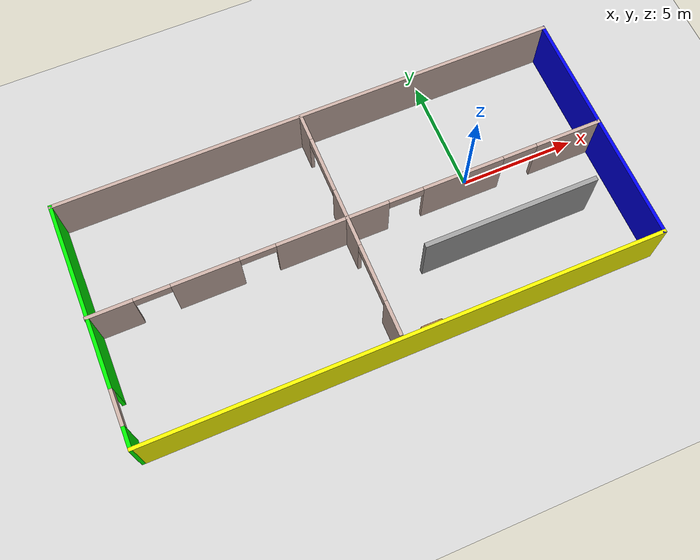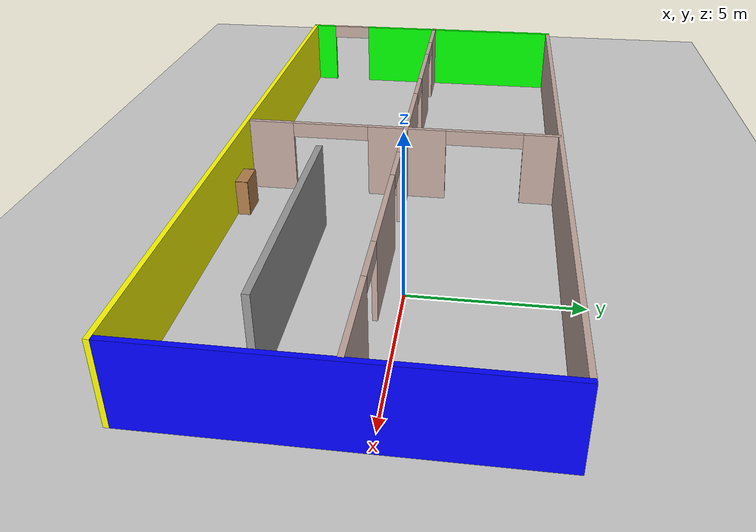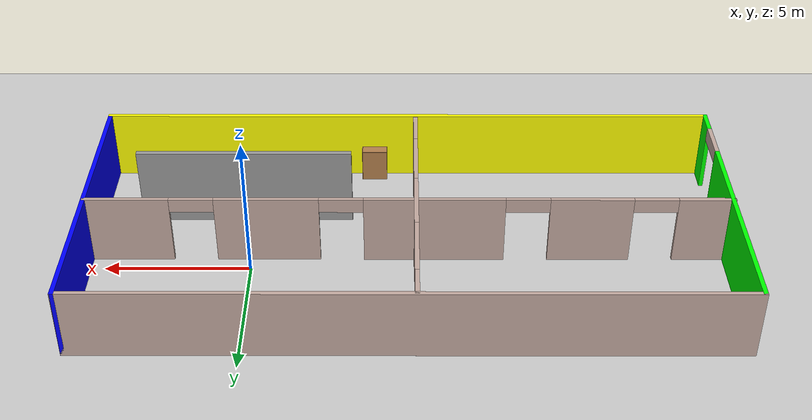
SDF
<sdf version="1.6">
 <world name="default">
  <model name="ground_plane">
   <static>1</static>
   <link name="link">
    <collision name="collision">
     <geometry><plane><normal>0 0 1</normal><size>100 100</size></plane></geometry>
     <surface><friction><ode><mu>100</mu><mu2>50</mu2></ode></friction></surface>
    </collision>
    <visual name="visual">
     <cast_shadows>0</cast_shadows>
     <geometry><plane><normal>0 0 1</normal><size>100 100</size></plane></geometry>
     <material>
      <script><uri>file://media/materials/scripts/gazebo.material</uri><name>Gazebo/Grey</name></script>
     </material>
    </visual>
   </link>
  </model>
  <model name="grey_wall">
   <static>1</static>
   <link name="link">
    <pose>0 0 1.4 0 -0 0</pose>
    <collision name="collision"><geometry><box><size>7.5 0.2 2.8</size></box></geometry></collision>
    <visual name="visual">
     <cast_shadows>0</cast_shadows>
     <geometry><box><size>7.5 0.2 2.8</size></box></geometry>
     <material>
      <script>
       <uri>model://grey_wall/materials/scripts</uri>
       <uri>model://grey_wall/materials/textures</uri>
       <name>vrc/grey_wall</name>
      </script>
     </material>
    </visual>
   </link>
   <pose>0.348783 -2.9961 0 0 -0 0</pose>
  </model>
  <model name="mybuilding">
   <link name="Wall_1">
    <pose>-10.9097 0 0 0 -0 1.5708</pose>
    <inertial>
     <mass>1</mass>
     <inertia><ixx>1</ixx><ixy>0</ixy><ixz>0</ixz><iyy>1</iyy><iyz>0</iyz><izz>1</izz></inertia>
    </inertial>
    <visual name="Wall_1_Visual_0">
     <pose>-4.76721 0 1.25 0 -0 0</pose>
     <geometry><box><size>0.965586 0.15 2.5</size></box></geometry>
     <material>
      <script><uri>file://media/materials/scripts/gazebo.material</uri><name>Gazebo/Grey</name></script>
      <ambient>0 1 0 1</ambient>
      <shader type="pixel"><normal_map>__default__</normal_map></shader>
      <diffuse>0 1 0 1</diffuse>
      <specular>0 1 0 1</specular>
      <emissive>0 1 0 1</emissive>
     </material>
     <meta><layer>0</layer></meta>
    </visual>
    <visual name="Wall_1_Visual_1">
     <pose>1.23279 0 1.25 0 -0 0</pose>
     <geometry><box><size>8.03441 0.15 2.5</size></box></geometry>
     <material>
      <script><uri>file://media/materials/scripts/gazebo.material</uri><name>Gazebo/Grey</name></script>
      <ambient>0 1 0 1</ambient>
      <shader type="pixel"><normal_map>__default__</normal_map></shader>
      <diffuse>0 1 0 1</diffuse>
      <specular>0 1 0 1</specular>
      <emissive>0 1 0 1</emissive>
     </material>
     <meta><layer>0</layer></meta>
    </visual>
    <visual name="Wall_1_Visual_2">
     <pose>-3.53441 0 2.25 0 -0 0</pose>
     <geometry><box><size>1.5 0.15 0.5</size></box></geometry>
     <material>
      <script><uri>file://media/materials/scripts/gazebo.material</uri><name>Gazebo/Grey</name></script>
      <ambient>0.761 0.663 0.627 1</ambient>
      <shader type="pixel"><normal_map>__default__</normal_map></shader>
      <diffuse>0.7 0.7 0.7 1</diffuse>
      <specular>0.01 0.01 0.01 1</specular>
      <emissive>0 0 0 1</emissive>
     </material>
     <meta><layer>0</layer></meta>
    </visual>
    <collision name="Wall_1_Collision_0">
     <pose>-4.76721 0 1.25 0 -0 0</pose>
     <geometry><box><size>0.965586 0.15 2.5</size></box></geometry>
     <surface>
      <friction>
       <ode><mu>1</mu><mu2>1</mu2><fdir1>0 0 0</fdir1><slip1>0</slip1><slip2>0</slip2></ode>
       <torsional>
        <coefficient>1</coefficient>
        <patch_radius>0</patch_radius>
        <surface_radius>0</surface_radius>
        <use_patch_radius>1</use_patch_radius>
        <ode><slip>0</slip></ode>
       </torsional>
      </friction>
      <bounce><restitution_coefficient>0</restitution_coefficient><threshold>1e+06</threshold></bounce>
      <contact>
       <collide_without_contact>0</collide_without_contact>
       <collide_without_contact_bitmask>1</collide_without_contact_bitmask>
       <collide_bitmask>1</collide_bitmask>
       <ode>
        <soft_cfm>0</soft_cfm>
        <soft_erp>0.2</soft_erp>
        <kp>1e+13</kp>
        <kd>1</kd>
        <max_vel>0.01</max_vel>
        <min_depth>0</min_depth>
       </ode>
       <bullet>
        <split_impulse>1</split_impulse>
        <split_impulse_penetration_threshold>-0.01</split_impulse_penetration_threshold>
        <soft_cfm>0</soft_cfm>
        <soft_erp>0.2</soft_erp>
        <kp>1e+13</kp>
        <kd>1</kd>
       </bullet>
      </contact>
     </surface>
    </collision>
    <collision name="Wall_1_Collision_1">
     <pose>1.23279 0 1.25 0 -0 0</pose>
     <geometry><box><size>8.03441 0.15 2.5</size></box></geometry>
     <surface>
      <friction>
       <ode><mu>1</mu><mu2>1</mu2><fdir1>0 0 0</fdir1><slip1>0</slip1><slip2>0</slip2></ode>
       <torsional>
        <coefficient>1</coefficient>
        <patch_radius>0</patch_radius>
        <surface_radius>0</surface_radius>
        <use_patch_radius>1</use_patch_radius>
        <ode><slip>0</slip></ode>
       </torsional>
      </friction>
      <bounce><restitution_coefficient>0</restitution_coefficient><threshold>1e+06</threshold></bounce>
      <contact>
       <collide_without_contact>0</collide_without_contact>
       <collide_without_contact_bitmask>1</collide_without_contact_bitmask>
       <collide_bitmask>1</collide_bitmask>
       <ode>
        <soft_cfm>0</soft_cfm>
        <soft_erp>0.2</soft_erp>
        <kp>1e+13</kp>
        <kd>1</kd>
        <max_vel>0.01</max_vel>
        <min_depth>0</min_depth>
       </ode>
       <bullet>
        <split_impulse>1</split_impulse>
        <split_impulse_penetration_threshold>-0.01</split_impulse_penetration_threshold>
        <soft_cfm>0</soft_cfm>
        <soft_erp>0.2</soft_erp>
        <kp>1e+13</kp>
        <kd>1</kd>
       </bullet>
      </contact>
     </surface>
    </collision>
    <collision name="Wall_1_Collision_2">
     <pose>-3.53441 0 2.25 0 -0 0</pose>
     <geometry><box><size>1.5 0.15 0.5</size></box></geometry>
     <surface>
      <friction>
       <ode><mu>1</mu><mu2>1</mu2><fdir1>0 0 0</fdir1><slip1>0</slip1><slip2>0</slip2></ode>
       <torsional>
        <coefficient>1</coefficient>
        <patch_radius>0</patch_radius>
        <surface_radius>0</surface_radius>
        <use_patch_radius>1</use_patch_radius>
        <ode><slip>0</slip></ode>
       </torsional>
      </friction>
      <bounce><restitution_coefficient>0</restitution_coefficient><threshold>1e+06</threshold></bounce>
      <contact>
       <collide_without_contact>0</collide_without_contact>
       <collide_without_contact_bitmask>1</collide_without_contact_bitmask>
       <collide_bitmask>1</collide_bitmask>
       <ode>
        <soft_cfm>0</soft_cfm>
        <soft_erp>0.2</soft_erp>
        <kp>1e+13</kp>
        <kd>1</kd>
        <max_vel>0.01</max_vel>
        <min_depth>0</min_depth>
       </ode>
       <bullet>
        <split_impulse>1</split_impulse>
        <split_impulse_penetration_threshold>-0.01</split_impulse_penetration_threshold>
        <soft_cfm>0</soft_cfm>
        <soft_erp>0.2</soft_erp>
        <kp>1e+13</kp>
        <kd>1</kd>
       </bullet>
      </contact>
     </surface>
    </collision>
   </link>
   <link name="Wall_2">
    <pose>0.015294 5.175 0 0 -0 0</pose>
    <visual name="Wall_2_Visual">
     <pose>0 0 1.25 0 -0 0</pose>
     <geometry><box><size>22 0.15 2.5</size></box></geometry>
     <material>
      <script><uri>file://media/materials/scripts/gazebo.material</uri><name>Gazebo/Grey</name></script>
      <ambient>0.760784 0.662745 0.627451 1</ambient>
      <shader type="pixel"/>
      <diffuse>0.7 0.7 0.7 1</diffuse>
      <specular>0.01 0.01 0.01 1</specular>
      <emissive>0 0 0 1</emissive>
     </material>
     <meta><layer>0</layer></meta>
    </visual>
    <collision name="Wall_2_Collision">
     <pose>0 0 1.25 0 -0 0</pose>
     <geometry><box><size>22 0.15 2.5</size></box></geometry>
     <surface>
      <friction>
       <ode><mu>1</mu><mu2>1</mu2><fdir1>0 0 0</fdir1><slip1>0</slip1><slip2>0</slip2></ode>
       <torsional>
        <coefficient>1</coefficient>
        <patch_radius>0</patch_radius>
        <surface_radius>0</surface_radius>
        <use_patch_radius>1</use_patch_radius>
        <ode><slip>0</slip></ode>
       </torsional>
      </friction>
      <bounce><restitution_coefficient>0</restitution_coefficient><threshold>1e+06</threshold></bounce>
      <contact>
       <collide_without_contact>0</collide_without_contact>
       <collide_without_contact_bitmask>1</collide_without_contact_bitmask>
       <collide_bitmask>1</collide_bitmask>
       <ode>
        <soft_cfm>0</soft_cfm>
        <soft_erp>0.2</soft_erp>
        <kp>1e+13</kp>
        <kd>1</kd>
        <max_vel>0.01</max_vel>
        <min_depth>0</min_depth>
       </ode>
       <bullet>
        <split_impulse>1</split_impulse>
        <split_impulse_penetration_threshold>-0.01</split_impulse_penetration_threshold>
        <soft_cfm>0</soft_cfm>
        <soft_erp>0.2</soft_erp>
        <kp>1e+13</kp>
        <kd>1</kd>
       </bullet>
      </contact>
     </surface>
    </collision>
   </link>
   <link name="Wall_3">
    <pose>10.9403 0 0 0 0 -1.5708</pose>
    <inertial>
     <mass>1</mass>
     <inertia><ixx>1</ixx><ixy>0</ixy><ixz>0</ixz><iyy>1</iyy><iyz>0</iyz><izz>1</izz></inertia>
    </inertial>
    <visual name="Wall_3_Visual">
     <pose>0 0 1.25 0 -0 0</pose>
     <geometry><box><size>10.5 0.15 2.5</size></box></geometry>
     <material>
      <script><uri>file://media/materials/scripts/gazebo.material</uri><name>Gazebo/Grey</name></script>
      <ambient>0 0 1 1</ambient>
      <shader type="pixel"><normal_map>__default__</normal_map></shader>
      <diffuse>0 0 1 1</diffuse>
      <specular>0 0 1 1</specular>
      <emissive>0 0 1 1</emissive>
     </material>
     <meta><layer>0</layer></meta>
    </visual>
    <collision name="Wall_3_Collision">
     <pose>0 0 1.25 0 -0 0</pose>
     <geometry><box><size>10.5 0.15 2.5</size></box></geometry>
     <surface>
      <friction>
       <ode><mu>1</mu><mu2>1</mu2><fdir1>0 0 0</fdir1><slip1>0</slip1><slip2>0</slip2></ode>
       <torsional>
        <coefficient>1</coefficient>
        <patch_radius>0</patch_radius>
        <surface_radius>0</surface_radius>
        <use_patch_radius>1</use_patch_radius>
        <ode><slip>0</slip></ode>
       </torsional>
      </friction>
      <bounce><restitution_coefficient>0</restitution_coefficient><threshold>1e+06</threshold></bounce>
      <contact>
       <collide_without_contact>0</collide_without_contact>
       <collide_without_contact_bitmask>1</collide_without_contact_bitmask>
       <collide_bitmask>1</collide_bitmask>
       <ode>
        <soft_cfm>0</soft_cfm>
        <soft_erp>0.2</soft_erp>
        <kp>1e+13</kp>
        <kd>1</kd>
        <max_vel>0.01</max_vel>
        <min_depth>0</min_depth>
       </ode>
       <bullet>
        <split_impulse>1</split_impulse>
        <split_impulse_penetration_threshold>-0.01</split_impulse_penetration_threshold>
        <soft_cfm>0</soft_cfm>
        <soft_erp>0.2</soft_erp>
        <kp>1e+13</kp>
        <kd>1</kd>
       </bullet>
      </contact>
     </surface>
    </collision>
   </link>
   <link name="Wall_4">
    <pose>0.015294 -5.175 0 0 -0 3.14159</pose>
    <inertial>
     <mass>1</mass>
     <inertia><ixx>1</ixx><ixy>0</ixy><ixz>0</ixz><iyy>1</iyy><iyz>0</iyz><izz>1</izz></inertia>
    </inertial>
    <visual name="Wall_4_Visual">
     <pose>0 0 1.25 0 -0 0</pose>
     <geometry><box><size>22 0.15 2.5</size></box></geometry>
     <material>
      <script><uri>file://media/materials/scripts/gazebo.material</uri><name>Gazebo/Grey</name></script>
      <ambient>1 1 0 1</ambient>
      <shader type="pixel"><normal_map>__default__</normal_map></shader>
      <diffuse>1 1 0 1</diffuse>
      <specular>1 1 0 1</specular>
      <emissive>1 1 0 1</emissive>
     </material>
     <meta><layer>0</layer></meta>
    </visual>
    <collision name="Wall_4_Collision">
     <pose>0 0 1.25 0 -0 0</pose>
     <geometry><box><size>22 0.15 2.5</size></box></geometry>
     <surface>
      <friction>
       <ode><mu>1</mu><mu2>1</mu2><fdir1>0 0 0</fdir1><slip1>0</slip1><slip2>0</slip2></ode>
       <torsional>
        <coefficient>1</coefficient>
        <patch_radius>0</patch_radius>
        <surface_radius>0</surface_radius>
        <use_patch_radius>1</use_patch_radius>
        <ode><slip>0</slip></ode>
       </torsional>
      </friction>
      <bounce><restitution_coefficient>0</restitution_coefficient><threshold>1e+06</threshold></bounce>
      <contact>
       <collide_without_contact>0</collide_without_contact>
       <collide_without_contact_bitmask>1</collide_without_contact_bitmask>
       <collide_bitmask>1</collide_bitmask>
       <ode>
        <soft_cfm>0</soft_cfm>
        <soft_erp>0.2</soft_erp>
        <kp>1e+13</kp>
        <kd>1</kd>
        <max_vel>0.01</max_vel>
        <min_depth>0</min_depth>
       </ode>
       <bullet>
        <split_impulse>1</split_impulse>
        <split_impulse_penetration_threshold>-0.01</split_impulse_penetration_threshold>
        <soft_cfm>0</soft_cfm>
        <soft_erp>0.2</soft_erp>
        <kp>1e+13</kp>
        <kd>1</kd>
       </bullet>
      </contact>
     </surface>
    </collision>
   </link>
   <link name="Wall_6">
    <pose>-0.015296 0.17829 0 0 -0 0</pose>
    <visual name="Wall_6_Visual_0">
     <pose>-10.0374 0 1.25 0 -0 0</pose>
     <geometry><box><size>1.92517 0.15 2.5</size></box></geometry>
     <material>
      <script><uri>file://media/materials/scripts/gazebo.material</uri><name>Gazebo/Grey</name></script>
      <ambient>0.760784 0.662745 0.627451 1</ambient>
      <shader type="pixel"/>
      <diffuse>0.7 0.7 0.7 1</diffuse>
      <specular>0.01 0.01 0.01 1</specular>
      <emissive>0 0 0 1</emissive>
     </material>
     <meta><layer>0</layer></meta>
    </visual>
    <visual name="Wall_6_Visual_1">
     <pose>-6.16822 0 1.25 0 -0 0</pose>
     <geometry><box><size>2.81322 0.15 2.5</size></box></geometry>
     <material>
      <script><uri>file://media/materials/scripts/gazebo.material</uri><name>Gazebo/Grey</name></script>
      <ambient>0.760784 0.662745 0.627451 1</ambient>
      <shader type="pixel"/>
      <diffuse>0.7 0.7 0.7 1</diffuse>
      <specular>0.01 0.01 0.01 1</specular>
      <emissive>0 0 0 1</emissive>
     </material>
     <meta><layer>0</layer></meta>
    </visual>
    <visual name="Wall_6_Visual_2">
     <pose>-0.860815 0 1.25 0 -0 0</pose>
     <geometry><box><size>4.80159 0.15 2.5</size></box></geometry>
     <material>
      <script><uri>file://media/materials/scripts/gazebo.material</uri><name>Gazebo/Grey</name></script>
      <ambient>0.760784 0.662745 0.627451 1</ambient>
      <shader type="pixel"/>
      <diffuse>0.7 0.7 0.7 1</diffuse>
      <specular>0.01 0.01 0.01 1</specular>
      <emissive>0 0 0 1</emissive>
     </material>
     <meta><layer>0</layer></meta>
    </visual>
    <visual name="Wall_6_Visual_3">
     <pose>4.81367 0 1.25 0 -0 0</pose>
     <geometry><box><size>3.54739 0.15 2.5</size></box></geometry>
     <material>
      <script><uri>file://media/materials/scripts/gazebo.material</uri><name>Gazebo/Grey</name></script>
      <ambient>0.760784 0.662745 0.627451 1</ambient>
      <shader type="pixel"/>
      <diffuse>0.7 0.7 0.7 1</diffuse>
      <specular>0.01 0.01 0.01 1</specular>
      <emissive>0 0 0 1</emissive>
     </material>
     <meta><layer>0</layer></meta>
    </visual>
    <visual name="Wall_6_Visual_4">
     <pose>9.54368 0 1.25 0 -0 0</pose>
     <geometry><box><size>2.91263 0.15 2.5</size></box></geometry>
     <material>
      <script><uri>file://media/materials/scripts/gazebo.material</uri><name>Gazebo/Grey</name></script>
      <ambient>0.760784 0.662745 0.627451 1</ambient>
      <shader type="pixel"/>
      <diffuse>0.7 0.7 0.7 1</diffuse>
      <specular>0.01 0.01 0.01 1</specular>
      <emissive>0 0 0 1</emissive>
     </material>
     <meta><layer>0</layer></meta>
    </visual>
    <visual name="Wall_6_Visual_5">
     <pose>-8.32483 0 2.25 0 -0 0</pose>
     <geometry><box><size>1.5 0.15 0.5</size></box></geometry>
     <material>
      <script><uri>file://media/materials/scripts/gazebo.material</uri><name>Gazebo/Grey</name></script>
      <ambient>0.760784 0.662745 0.627451 1</ambient>
      <shader type="pixel"/>
      <diffuse>0.7 0.7 0.7 1</diffuse>
      <specular>0.01 0.01 0.01 1</specular>
      <emissive>0 0 0 1</emissive>
     </material>
     <meta><layer>0</layer></meta>
    </visual>
    <visual name="Wall_6_Visual_6">
     <pose>-4.01161 0 2.25 0 -0 0</pose>
     <geometry><box><size>1.5 0.15 0.5</size></box></geometry>
     <material>
      <script><uri>file://media/materials/scripts/gazebo.material</uri><name>Gazebo/Grey</name></script>
      <ambient>0.760784 0.662745 0.627451 1</ambient>
      <shader type="pixel"/>
      <diffuse>0.7 0.7 0.7 1</diffuse>
      <specular>0.01 0.01 0.01 1</specular>
      <emissive>0 0 0 1</emissive>
     </material>
     <meta><layer>0</layer></meta>
    </visual>
    <visual name="Wall_6_Visual_7">
     <pose>2.28998 0 2.25 0 -0 0</pose>
     <geometry><box><size>1.5 0.15 0.5</size></box></geometry>
     <material>
      <script><uri>file://media/materials/scripts/gazebo.material</uri><name>Gazebo/Grey</name></script>
      <ambient>0.760784 0.662745 0.627451 1</ambient>
      <shader type="pixel"/>
      <diffuse>0.7 0.7 0.7 1</diffuse>
      <specular>0.01 0.01 0.01 1</specular>
      <emissive>0 0 0 1</emissive>
     </material>
     <meta><layer>0</layer></meta>
    </visual>
    <visual name="Wall_6_Visual_8">
     <pose>7.33737 0 2.25 0 -0 0</pose>
     <geometry><box><size>1.5 0.15 0.5</size></box></geometry>
     <material>
      <script><uri>file://media/materials/scripts/gazebo.material</uri><name>Gazebo/Grey</name></script>
      <ambient>0.760784 0.662745 0.627451 1</ambient>
      <shader type="pixel"/>
      <diffuse>0.7 0.7 0.7 1</diffuse>
      <specular>0.01 0.01 0.01 1</specular>
      <emissive>0 0 0 1</emissive>
     </material>
     <meta><layer>0</layer></meta>
    </visual>
    <collision name="Wall_6_Collision_0">
     <pose>-10.0374 0 1.25 0 -0 0</pose>
     <geometry><box><size>1.92517 0.15 2.5</size></box></geometry>
     <surface>
      <friction>
       <ode><mu>1</mu><mu2>1</mu2><fdir1>0 0 0</fdir1><slip1>0</slip1><slip2>0</slip2></ode>
       <torsional>
        <coefficient>1</coefficient>
        <patch_radius>0</patch_radius>
        <surface_radius>0</surface_radius>
        <use_patch_radius>1</use_patch_radius>
        <ode><slip>0</slip></ode>
       </torsional>
      </friction>
      <bounce><restitution_coefficient>0</restitution_coefficient><threshold>1e+06</threshold></bounce>
      <contact>
       <collide_without_contact>0</collide_without_contact>
       <collide_without_contact_bitmask>1</collide_without_contact_bitmask>
       <collide_bitmask>1</collide_bitmask>
       <ode>
        <soft_cfm>0</soft_cfm>
        <soft_erp>0.2</soft_erp>
        <kp>1e+13</kp>
        <kd>1</kd>
        <max_vel>0.01</max_vel>
        <min_depth>0</min_depth>
       </ode>
       <bullet>
        <split_impulse>1</split_impulse>
        <split_impulse_penetration_threshold>-0.01</split_impulse_penetration_threshold>
        <soft_cfm>0</soft_cfm>
        <soft_erp>0.2</soft_erp>
        <kp>1e+13</kp>
        <kd>1</kd>
       </bullet>
      </contact>
     </surface>
    </collision>
    <collision name="Wall_6_Collision_1">
     <pose>-6.16822 0 1.25 0 -0 0</pose>
     <geometry><box><size>2.81322 0.15 2.5</size></box></geometry>
     <surface>
      <friction>
       <ode><mu>1</mu><mu2>1</mu2><fdir1>0 0 0</fdir1><slip1>0</slip1><slip2>0</slip2></ode>
       <torsional>
        <coefficient>1</coefficient>
        <patch_radius>0</patch_radius>
        <surface_radius>0</surface_radius>
        <use_patch_radius>1</use_patch_radius>
        <ode><slip>0</slip></ode>
       </torsional>
      </friction>
      <bounce><restitution_coefficient>0</restitution_coefficient><threshold>1e+06</threshold></bounce>
      <contact>
       <collide_without_contact>0</collide_without_contact>
       <collide_without_contact_bitmask>1</collide_without_contact_bitmask>
       <collide_bitmask>1</collide_bitmask>
       <ode>
        <soft_cfm>0</soft_cfm>
        <soft_erp>0.2</soft_erp>
        <kp>1e+13</kp>
        <kd>1</kd>
        <max_vel>0.01</max_vel>
        <min_depth>0</min_depth>
       </ode>
       <bullet>
        <split_impulse>1</split_impulse>
        <split_impulse_penetration_threshold>-0.01</split_impulse_penetration_threshold>
        <soft_cfm>0</soft_cfm>
        <soft_erp>0.2</soft_erp>
        <kp>1e+13</kp>
        <kd>1</kd>
       </bullet>
      </contact>
     </surface>
    </collision>
    <collision name="Wall_6_Collision_2">
     <pose>-0.860815 0 1.25 0 -0 0</pose>
     <geometry><box><size>4.80159 0.15 2.5</size></box></geometry>
     <surface>
      <friction>
       <ode><mu>1</mu><mu2>1</mu2><fdir1>0 0 0</fdir1><slip1>0</slip1><slip2>0</slip2></ode>
       <torsional>
        <coefficient>1</coefficient>
        <patch_radius>0</patch_radius>
        <surface_radius>0</surface_radius>
        <use_patch_radius>1</use_patch_radius>
        <ode><slip>0</slip></ode>
       </torsional>
      </friction>
      <bounce><restitution_coefficient>0</restitution_coefficient><threshold>1e+06</threshold></bounce>
      <contact>
       <collide_without_contact>0</collide_without_contact>
       <collide_without_contact_bitmask>1</collide_without_contact_bitmask>
       <collide_bitmask>1</collide_bitmask>
       <ode>
        <soft_cfm>0</soft_cfm>
        <soft_erp>0.2</soft_erp>
        <kp>1e+13</kp>
        <kd>1</kd>
        <max_vel>0.01</max_vel>
        <min_depth>0</min_depth>
       </ode>
       <bullet>
        <split_impulse>1</split_impulse>
        <split_impulse_penetration_threshold>-0.01</split_impulse_penetration_threshold>
        <soft_cfm>0</soft_cfm>
        <soft_erp>0.2</soft_erp>
        <kp>1e+13</kp>
        <kd>1</kd>
       </bullet>
      </contact>
     </surface>
    </collision>
    <collision name="Wall_6_Collision_3">
     <pose>4.81367 0 1.25 0 -0 0</pose>
     <geometry><box><size>3.54739 0.15 2.5</size></box></geometry>
     <surface>
      <friction>
       <ode><mu>1</mu><mu2>1</mu2><fdir1>0 0 0</fdir1><slip1>0</slip1><slip2>0</slip2></ode>
       <torsional>
        <coefficient>1</coefficient>
        <patch_radius>0</patch_radius>
        <surface_radius>0</surface_radius>
        <use_patch_radius>1</use_patch_radius>
        <ode><slip>0</slip></ode>
       </torsional>
      </friction>
      <bounce><restitution_coefficient>0</restitution_coefficient><threshold>1e+06</threshold></bounce>
      <contact>
       <collide_without_contact>0</collide_without_contact>
       <collide_without_contact_bitmask>1</collide_without_contact_bitmask>
       <collide_bitmask>1</collide_bitmask>
       <ode>
        <soft_cfm>0</soft_cfm>
        <soft_erp>0.2</soft_erp>
        <kp>1e+13</kp>
        <kd>1</kd>
        <max_vel>0.01</max_vel>
        <min_depth>0</min_depth>
       </ode>
       <bullet>
        <split_impulse>1</split_impulse>
        <split_impulse_penetration_threshold>-0.01</split_impulse_penetration_threshold>
        <soft_cfm>0</soft_cfm>
        <soft_erp>0.2</soft_erp>
        <kp>1e+13</kp>
        <kd>1</kd>
       </bullet>
      </contact>
     </surface>
    </collision>
    <collision name="Wall_6_Collision_4">
     <pose>9.54368 0 1.25 0 -0 0</pose>
     <geometry><box><size>2.91263 0.15 2.5</size></box></geometry>
     <surface>
      <friction>
       <ode><mu>1</mu><mu2>1</mu2><fdir1>0 0 0</fdir1><slip1>0</slip1><slip2>0</slip2></ode>
       <torsional>
        <coefficient>1</coefficient>
        <patch_radius>0</patch_radius>
        <surface_radius>0</surface_radius>
        <use_patch_radius>1</use_patch_radius>
        <ode><slip>0</slip></ode>
       </torsional>
      </friction>
      <bounce><restitution_coefficient>0</restitution_coefficient><threshold>1e+06</threshold></bounce>
      <contact>
       <collide_without_contact>0</collide_without_contact>
       <collide_without_contact_bitmask>1</collide_without_contact_bitmask>
       <collide_bitmask>1</collide_bitmask>
       <ode>
        <soft_cfm>0</soft_cfm>
        <soft_erp>0.2</soft_erp>
        <kp>1e+13</kp>
        <kd>1</kd>
        <max_vel>0.01</max_vel>
        <min_depth>0</min_depth>
       </ode>
       <bullet>
        <split_impulse>1</split_impulse>
        <split_impulse_penetration_threshold>-0.01</split_impulse_penetration_threshold>
        <soft_cfm>0</soft_cfm>
        <soft_erp>0.2</soft_erp>
        <kp>1e+13</kp>
        <kd>1</kd>
       </bullet>
      </contact>
     </surface>
    </collision>
    <collision name="Wall_6_Collision_5">
     <pose>-8.32483 0 2.25 0 -0 0</pose>
     <geometry><box><size>1.5 0.15 0.5</size></box></geometry>
     <surface>
      <friction>
       <ode><mu>1</mu><mu2>1</mu2><fdir1>0 0 0</fdir1><slip1>0</slip1><slip2>0</slip2></ode>
       <torsional>
        <coefficient>1</coefficient>
        <patch_radius>0</patch_radius>
        <surface_radius>0</surface_radius>
        <use_patch_radius>1</use_patch_radius>
        <ode><slip>0</slip></ode>
       </torsional>
      </friction>
      <bounce><restitution_coefficient>0</restitution_coefficient><threshold>1e+06</threshold></bounce>
      <contact>
       <collide_without_contact>0</collide_without_contact>
       <collide_without_contact_bitmask>1</collide_without_contact_bitmask>
       <collide_bitmask>1</collide_bitmask>
       <ode>
        <soft_cfm>0</soft_cfm>
        <soft_erp>0.2</soft_erp>
        <kp>1e+13</kp>
        <kd>1</kd>
        <max_vel>0.01</max_vel>
        <min_depth>0</min_depth>
       </ode>
       <bullet>
        <split_impulse>1</split_impulse>
        <split_impulse_penetration_threshold>-0.01</split_impulse_penetration_threshold>
        <soft_cfm>0</soft_cfm>
        <soft_erp>0.2</soft_erp>
        <kp>1e+13</kp>
        <kd>1</kd>
       </bullet>
      </contact>
     </surface>
    </collision>
    <collision name="Wall_6_Collision_7">
     <pose>2.28998 0 2.25 0 -0 0</pose>
     <geometry><box><size>1.5 0.15 0.5</size></box></geometry>
     <surface>
      <friction>
       <ode><mu>1</mu><mu2>1</mu2><fdir1>0 0 0</fdir1><slip1>0</slip1><slip2>0</slip2></ode>
       <torsional>
        <coefficient>1</coefficient>
        <patch_radius>0</patch_radius>
        <surface_radius>0</surface_radius>
        <use_patch_radius>1</use_patch_radius>
        <ode><slip>0</slip></ode>
       </torsional>
      </friction>
      <bounce><restitution_coefficient>0</restitution_coefficient><threshold>1e+06</threshold></bounce>
      <contact>
       <collide_without_contact>0</collide_without_contact>
       <collide_without_contact_bitmask>1</collide_without_contact_bitmask>
       <collide_bitmask>1</collide_bitmask>
       <ode>
        <soft_cfm>0</soft_cfm>
        <soft_erp>0.2</soft_erp>
        <kp>1e+13</kp>
        <kd>1</kd>
        <max_vel>0.01</max_vel>
        <min_depth>0</min_depth>
       </ode>
       <bullet>
        <split_impulse>1</split_impulse>
        <split_impulse_penetration_threshold>-0.01</split_impulse_penetration_threshold>
        <soft_cfm>0</soft_cfm>
        <soft_erp>0.2</soft_erp>
        <kp>1e+13</kp>
        <kd>1</kd>
       </bullet>
      </contact>
     </surface>
    </collision>
    <collision name="Wall_6_Collision_6">
     <pose>-4.01161 0 2.25 0 -0 0</pose>
     <geometry><box><size>1.5 0.15 0.5</size></box></geometry>
     <surface>
      <friction>
       <ode><mu>1</mu><mu2>1</mu2><fdir1>0 0 0</fdir1><slip1>0</slip1><slip2>0</slip2></ode>
       <torsional>
        <coefficient>1</coefficient>
        <patch_radius>0</patch_radius>
        <surface_radius>0</surface_radius>
        <use_patch_radius>1</use_patch_radius>
        <ode><slip>0</slip></ode>
       </torsional>
      </friction>
      <bounce><restitution_coefficient>0</restitution_coefficient><threshold>1e+06</threshold></bounce>
      <contact>
       <collide_without_contact>0</collide_without_contact>
       <collide_without_contact_bitmask>1</collide_without_contact_bitmask>
       <collide_bitmask>1</collide_bitmask>
       <ode>
        <soft_cfm>0</soft_cfm>
        <soft_erp>0.2</soft_erp>
        <kp>1e+13</kp>
        <kd>1</kd>
        <max_vel>0.01</max_vel>
        <min_depth>0</min_depth>
       </ode>
       <bullet>
        <split_impulse>1</split_impulse>
        <split_impulse_penetration_threshold>-0.01</split_impulse_penetration_threshold>
        <soft_cfm>0</soft_cfm>
        <soft_erp>0.2</soft_erp>
        <kp>1e+13</kp>
        <kd>1</kd>
       </bullet>
      </contact>
     </surface>
    </collision>
    <collision name="Wall_6_Collision_8">
     <pose>7.33737 0 2.25 0 -0 0</pose>
     <geometry><box><size>1.5 0.15 0.5</size></box></geometry>
     <surface>
      <friction>
       <ode><mu>1</mu><mu2>1</mu2><fdir1>0 0 0</fdir1><slip1>0</slip1><slip2>0</slip2></ode>
       <torsional>
        <coefficient>1</coefficient>
        <patch_radius>0</patch_radius>
        <surface_radius>0</surface_radius>
        <use_patch_radius>1</use_patch_radius>
        <ode><slip>0</slip></ode>
       </torsional>
      </friction>
      <bounce><restitution_coefficient>0</restitution_coefficient><threshold>1e+06</threshold></bounce>
      <contact>
       <collide_without_contact>0</collide_without_contact>
       <collide_without_contact_bitmask>1</collide_without_contact_bitmask>
       <collide_bitmask>1</collide_bitmask>
       <ode>
        <soft_cfm>0</soft_cfm>
        <soft_erp>0.2</soft_erp>
        <kp>1e+13</kp>
        <kd>1</kd>
        <max_vel>0.01</max_vel>
        <min_depth>0</min_depth>
       </ode>
       <bullet>
        <split_impulse>1</split_impulse>
        <split_impulse_penetration_threshold>-0.01</split_impulse_penetration_threshold>
        <soft_cfm>0</soft_cfm>
        <soft_erp>0.2</soft_erp>
        <kp>1e+13</kp>
        <kd>1</kd>
       </bullet>
      </contact>
     </surface>
    </collision>
   </link>
   <link name="Wall_8">
    <pose>-0.264307 0.053317 0 0 0 -1.5708</pose>
    <visual name="Wall_8_Visual_0">
     <pose>-4.53478 0 1.25 0 -0 0</pose>
     <geometry><box><size>1.18045 0.15 2.5</size></box></geometry>
     <material>
      <script><uri>file://media/materials/scripts/gazebo.material</uri><name>Gazebo/Grey</name></script>
      <ambient>0.760784 0.662745 0.627451 1</ambient>
      <shader type="pixel"/>
      <diffuse>0.7 0.7 0.7 1</diffuse>
      <specular>0.01 0.01 0.01 1</specular>
      <emissive>0 0 0 1</emissive>
     </material>
     <meta><layer>0</layer></meta>
    </visual>
    <visual name="Wall_8_Visual_1">
     <pose>-0.155563 0 1.25 0 -0 0</pose>
     <geometry><box><size>2.57798 0.15 2.5</size></box></geometry>
     <material>
      <script><uri>file://media/materials/scripts/gazebo.material</uri><name>Gazebo/Grey</name></script>
      <ambient>0.760784 0.662745 0.627451 1</ambient>
      <shader type="pixel"/>
      <diffuse>0.7 0.7 0.7 1</diffuse>
      <specular>0.01 0.01 0.01 1</specular>
      <emissive>0 0 0 1</emissive>
     </material>
     <meta><layer>0</layer></meta>
    </visual>
    <visual name="Wall_8_Visual_2">
     <pose>4.37921 0 1.25 0 -0 0</pose>
     <geometry><box><size>1.49157 0.15 2.5</size></box></geometry>
     <material>
      <script><uri>file://media/materials/scripts/gazebo.material</uri><name>Gazebo/Grey</name></script>
      <ambient>0.760784 0.662745 0.627451 1</ambient>
      <shader type="pixel"/>
      <diffuse>0.7 0.7 0.7 1</diffuse>
      <specular>0.01 0.01 0.01 1</specular>
      <emissive>0 0 0 1</emissive>
     </material>
     <meta><layer>0</layer></meta>
    </visual>
    <visual name="Wall_8_Visual_3">
     <pose>-2.69455 0 2.25 0 -0 0</pose>
     <geometry><box><size>2.5 0.15 0.5</size></box></geometry>
     <material>
      <script><uri>file://media/materials/scripts/gazebo.material</uri><name>Gazebo/Grey</name></script>
      <ambient>0.760784 0.662745 0.627451 1</ambient>
      <shader type="pixel"/>
      <diffuse>0.7 0.7 0.7 1</diffuse>
      <specular>0.01 0.01 0.01 1</specular>
      <emissive>0 0 0 1</emissive>
     </material>
     <meta><layer>0</layer></meta>
    </visual>
    <visual name="Wall_8_Visual_4">
     <pose>2.38343 0 2.25 0 -0 0</pose>
     <geometry><box><size>2.5 0.15 0.5</size></box></geometry>
     <material>
      <script><uri>file://media/materials/scripts/gazebo.material</uri><name>Gazebo/Grey</name></script>
      <ambient>0.760784 0.662745 0.627451 1</ambient>
      <shader type="pixel"/>
      <diffuse>0.7 0.7 0.7 1</diffuse>
      <specular>0.01 0.01 0.01 1</specular>
      <emissive>0 0 0 1</emissive>
     </material>
     <meta><layer>0</layer></meta>
    </visual>
    <collision name="Wall_8_Collision_2">
     <pose>4.37921 0 1.25 0 -0 0</pose>
     <geometry><box><size>1.49157 0.15 2.5</size></box></geometry>
     <surface>
      <friction>
       <ode><mu>1</mu><mu2>1</mu2><fdir1>0 0 0</fdir1><slip1>0</slip1><slip2>0</slip2></ode>
       <torsional>
        <coefficient>1</coefficient>
        <patch_radius>0</patch_radius>
        <surface_radius>0</surface_radius>
        <use_patch_radius>1</use_patch_radius>
        <ode><slip>0</slip></ode>
       </torsional>
      </friction>
      <bounce><restitution_coefficient>0</restitution_coefficient><threshold>1e+06</threshold></bounce>
      <contact>
       <collide_without_contact>0</collide_without_contact>
       <collide_without_contact_bitmask>1</collide_without_contact_bitmask>
       <collide_bitmask>1</collide_bitmask>
       <ode>
        <soft_cfm>0</soft_cfm>
        <soft_erp>0.2</soft_erp>
        <kp>1e+13</kp>
        <kd>1</kd>
        <max_vel>0.01</max_vel>
        <min_depth>0</min_depth>
       </ode>
       <bullet>
        <split_impulse>1</split_impulse>
        <split_impulse_penetration_threshold>-0.01</split_impulse_penetration_threshold>
        <soft_cfm>0</soft_cfm>
        <soft_erp>0.2</soft_erp>
        <kp>1e+13</kp>
        <kd>1</kd>
       </bullet>
      </contact>
     </surface>
    </collision>
    <collision name="Wall_8_Collision_0">
     <pose>-4.53478 0 1.25 0 -0 0</pose>
     <geometry><box><size>1.18045 0.15 2.5</size></box></geometry>
     <surface>
      <friction>
       <ode><mu>1</mu><mu2>1</mu2><fdir1>0 0 0</fdir1><slip1>0</slip1><slip2>0</slip2></ode>
       <torsional>
        <coefficient>1</coefficient>
        <patch_radius>0</patch_radius>
        <surface_radius>0</surface_radius>
        <use_patch_radius>1</use_patch_radius>
        <ode><slip>0</slip></ode>
       </torsional>
      </friction>
      <bounce><restitution_coefficient>0</restitution_coefficient><threshold>1e+06</threshold></bounce>
      <contact>
       <collide_without_contact>0</collide_without_contact>
       <collide_without_contact_bitmask>1</collide_without_contact_bitmask>
       <collide_bitmask>1</collide_bitmask>
       <ode>
        <soft_cfm>0</soft_cfm>
        <soft_erp>0.2</soft_erp>
        <kp>1e+13</kp>
        <kd>1</kd>
        <max_vel>0.01</max_vel>
        <min_depth>0</min_depth>
       </ode>
       <bullet>
        <split_impulse>1</split_impulse>
        <split_impulse_penetration_threshold>-0.01</split_impulse_penetration_threshold>
        <soft_cfm>0</soft_cfm>
        <soft_erp>0.2</soft_erp>
        <kp>1e+13</kp>
        <kd>1</kd>
       </bullet>
      </contact>
     </surface>
    </collision>
    <collision name="Wall_8_Collision_1">
     <pose>-0.155563 0 1.25 0 -0 0</pose>
     <geometry><box><size>2.57798 0.15 2.5</size></box></geometry>
     <surface>
      <friction>
       <ode><mu>1</mu><mu2>1</mu2><fdir1>0 0 0</fdir1><slip1>0</slip1><slip2>0</slip2></ode>
       <torsional>
        <coefficient>1</coefficient>
        <patch_radius>0</patch_radius>
        <surface_radius>0</surface_radius>
        <use_patch_radius>1</use_patch_radius>
        <ode><slip>0</slip></ode>
       </torsional>
      </friction>
      <bounce><restitution_coefficient>0</restitution_coefficient><threshold>1e+06</threshold></bounce>
      <contact>
       <collide_without_contact>0</collide_without_contact>
       <collide_without_contact_bitmask>1</collide_without_contact_bitmask>
       <collide_bitmask>1</collide_bitmask>
       <ode>
        <soft_cfm>0</soft_cfm>
        <soft_erp>0.2</soft_erp>
        <kp>1e+13</kp>
        <kd>1</kd>
        <max_vel>0.01</max_vel>
        <min_depth>0</min_depth>
       </ode>
       <bullet>
        <split_impulse>1</split_impulse>
        <split_impulse_penetration_threshold>-0.01</split_impulse_penetration_threshold>
        <soft_cfm>0</soft_cfm>
        <soft_erp>0.2</soft_erp>
        <kp>1e+13</kp>
        <kd>1</kd>
       </bullet>
      </contact>
     </surface>
    </collision>
    <collision name="Wall_8_Collision_3">
     <pose>-2.69455 0 2.25 0 -0 0</pose>
     <geometry><box><size>2.5 0.15 0.5</size></box></geometry>
     <surface>
      <friction>
       <ode><mu>1</mu><mu2>1</mu2><fdir1>0 0 0</fdir1><slip1>0</slip1><slip2>0</slip2></ode>
       <torsional>
        <coefficient>1</coefficient>
        <patch_radius>0</patch_radius>
        <surface_radius>0</surface_radius>
        <use_patch_radius>1</use_patch_radius>
        <ode><slip>0</slip></ode>
       </torsional>
      </friction>
      <bounce><restitution_coefficient>0</restitution_coefficient><threshold>1e+06</threshold></bounce>
      <contact>
       <collide_without_contact>0</collide_without_contact>
       <collide_without_contact_bitmask>1</collide_without_contact_bitmask>
       <collide_bitmask>1</collide_bitmask>
       <ode>
        <soft_cfm>0</soft_cfm>
        <soft_erp>0.2</soft_erp>
        <kp>1e+13</kp>
        <kd>1</kd>
        <max_vel>0.01</max_vel>
        <min_depth>0</min_depth>
       </ode>
       <bullet>
        <split_impulse>1</split_impulse>
        <split_impulse_penetration_threshold>-0.01</split_impulse_penetration_threshold>
        <soft_cfm>0</soft_cfm>
        <soft_erp>0.2</soft_erp>
        <kp>1e+13</kp>
        <kd>1</kd>
       </bullet>
      </contact>
     </surface>
    </collision>
    <collision name="Wall_8_Collision_4">
     <pose>2.38343 0 2.25 0 -0 0</pose>
     <geometry><box><size>2.5 0.15 0.5</size></box></geometry>
     <surface>
      <friction>
       <ode><mu>1</mu><mu2>1</mu2><fdir1>0 0 0</fdir1><slip1>0</slip1><slip2>0</slip2></ode>
       <torsional>
        <coefficient>1</coefficient>
        <patch_radius>0</patch_radius>
        <surface_radius>0</surface_radius>
        <use_patch_radius>1</use_patch_radius>
        <ode><slip>0</slip></ode>
       </torsional>
      </friction>
      <bounce><restitution_coefficient>0</restitution_coefficient><threshold>1e+06</threshold></bounce>
      <contact>
       <collide_without_contact>0</collide_without_contact>
       <collide_without_contact_bitmask>1</collide_without_contact_bitmask>
       <collide_bitmask>1</collide_bitmask>
       <ode>
        <soft_cfm>0</soft_cfm>
        <soft_erp>0.2</soft_erp>
        <kp>1e+13</kp>
        <kd>1</kd>
        <max_vel>0.01</max_vel>
        <min_depth>0</min_depth>
       </ode>
       <bullet>
        <split_impulse>1</split_impulse>
        <split_impulse_penetration_threshold>-0.01</split_impulse_penetration_threshold>
        <soft_cfm>0</soft_cfm>
        <soft_erp>0.2</soft_erp>
        <kp>1e+13</kp>
        <kd>1</kd>
       </bullet>
      </contact>
     </surface>
    </collision>
   </link>
   <static>1</static>
   <pose>-5.3944 -0.795609 0 0 -0 0</pose>
  </model>
  <model name="bookshelf_1">
   <static>1</static>
   <link name="link">
    <inertial><mass>1</mass></inertial>
    <collision name="back">
     <pose>0 0.005 0.6 0 -0 0</pose>
     <geometry><box><size>0.9 0.01 1.2</size></box></geometry>
    </collision>
    <visual name="visual1">
     <pose>0 0.005 0.6 0 -0 0</pose>
     <geometry><box><size>0.9 0.01 1.2</size></box></geometry>
     <material>
      <script><uri>file://media/materials/scripts/gazebo.material</uri><name>Gazebo/Wood</name></script>
     </material>
    </visual>
    <collision name="left_side">
     <pose>0.45 -0.195 0.6 0 -0 0</pose>
     <geometry><box><size>0.02 0.4 1.2</size></box></geometry>
    </collision>
    <visual name="visual2">
     <pose>0.45 -0.195 0.6 0 -0 0</pose>
     <geometry><box><size>0.02 0.4 1.2</size></box></geometry>
     <material>
      <script><uri>file://media/materials/scripts/gazebo.material</uri><name>Gazebo/Wood</name></script>
     </material>
    </visual>
    <collision name="right_side">
     <pose>-0.45 -0.195 0.6 0 -0 0</pose>
     <geometry><box><size>0.02 0.4 1.2</size></box></geometry>
    </collision>
    <visual name="visual3">
     <pose>-0.45 -0.195 0.6 0 -0 0</pose>
     <geometry><box><size>0.02 0.4 1.2</size></box></geometry>
     <material>
      <script><uri>file://media/materials/scripts/gazebo.material</uri><name>Gazebo/Wood</name></script>
     </material>
    </visual>
    <collision name="bottom">
     <pose>0 -0.195 0.03 0 -0 0</pose>
     <geometry><box><size>0.88 0.4 0.06</size></box></geometry>
    </collision>
    <visual name="visual4">
     <pose>0 -0.195 0.03 0 -0 0</pose>
     <geometry><box><size>0.88 0.4 0.06</size></box></geometry>
     <material>
      <script><uri>file://media/materials/scripts/gazebo.material</uri><name>Gazebo/Wood</name></script>
     </material>
    </visual>
    <collision name="top">
     <pose>0 -0.195 1.19 0 -0 0</pose>
     <geometry><box><size>0.88 0.4 0.02</size></box></geometry>
    </collision>
    <visual name="visual5">
     <pose>0 -0.195 1.19 0 -0 0</pose>
     <geometry><box><size>0.88 0.4 0.02</size></box></geometry>
     <material>
      <script><uri>file://media/materials/scripts/gazebo.material</uri><name>Gazebo/Wood</name></script>
     </material>
    </visual>
    <collision name="low_shelf">
     <pose>0 -0.195 0.43 0 -0 0</pose>
     <geometry><box><size>0.88 0.4 0.02</size></box></geometry>
    </collision>
    <visual name="visual6">
     <pose>0 -0.195 0.43 0 -0 0</pose>
     <geometry><box><size>0.88 0.4 0.02</size></box></geometry>
     <material>
      <script><uri>file://media/materials/scripts/gazebo.material</uri><name>Gazebo/Wood</name></script>
     </material>
    </visual>
    <collision name="high_shelf">
     <pose>0 -0.195 0.8 0 -0 0</pose>
     <geometry><box><size>0.88 0.4 0.02</size></box></geometry>
    </collision>
    <visual name="visual7">
     <pose>0 -0.195 0.8 0 -0 0</pose>
     <geometry><box><size>0.88 0.4 0.02</size></box></geometry>
     <material>
      <script><uri>file://media/materials/scripts/gazebo.material</uri><name>Gazebo/Wood</name></script>
     </material>
    </visual>
   </link>
   <pose>-4.15216 -5.49141 0 0 -0 0</pose>
  </model>
 </world>
</sdf>
